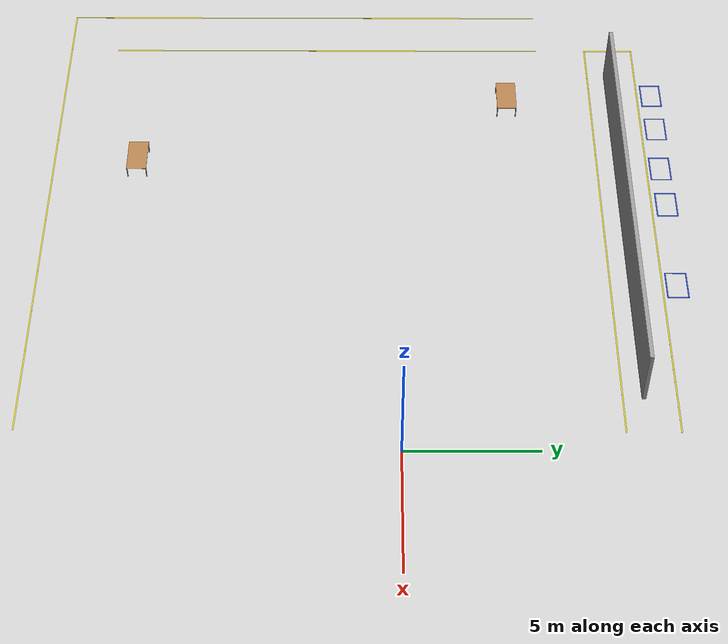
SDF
<sdf version="1.6">
 <world name="default">
  <model name="ground_plane">
   <static>1</static>
   <link name="link">
    <collision name="collision">
     <geometry><plane><normal>0 0 1</normal><size>100 100</size></plane></geometry>
     <surface><friction><ode><mu>100</mu><mu2>50</mu2></ode></friction></surface>
    </collision>
    <visual name="visual">
     <cast_shadows>0</cast_shadows>
     <geometry><plane><normal>0 0 1</normal><size>100 100</size></plane></geometry>
     <material>
      <script><uri>file://media/materials/scripts/gazebo.material</uri><name>Gazebo/Grey</name></script>
     </material>
    </visual>
   </link>
  </model>
  <model name="factoryWall_1">
   <pose>-10.8 8.85 0 0 -0 1.570796</pose>
   <link name="Wall_0">
    <collision name="Wall1_0_Collision">
     <geometry><box><size>17 0.15 2.5</size></box></geometry>
     <pose>0 0 1.25 0 -0 0</pose>
    </collision>
    <visual name="Wall1_0_Visual">
     <pose>0 0 1.25 0 -0 0</pose>
     <geometry><box><size>17 0.15 2.5</size></box></geometry>
     <material>
      <script><uri>file://media/materials/scripts/gazebo.material</uri><name>Gazebo/Grey</name></script>
      <ambient>1 1 1 1</ambient>
     </material>
     <meta><layer>0</layer></meta>
    </visual>
    <pose>0 0 0 0 -0 1.570796</pose>
   </link>
   <static>1</static>
  </model>
  <model name="line20m">
   <link name="link_0">
    <inertial>
     <mass>1</mass>
     <inertia>
      <ixx>0.166667</ixx>
      <ixy>0</ixy>
      <ixz>0</ixz>
      <iyy>0.166667</iyy>
      <iyz>0</iyz>
      <izz>0.166667</izz>
     </inertia>
    </inertial>
    <visual name="visual">
     <geometry><box><size>0.05 20 0.001</size></box></geometry>
     <material>
      <lighting>1</lighting>
      <script><uri>file://media/materials/scripts/gazebo.material</uri><name>Gazebo/Yellow</name></script>
     </material>
    </visual>
    <collision name="collision">
     <geometry><box><size>0.05 20 0.001</size></box></geometry>
     <surface>
      <friction>
       <ode><mu>1</mu><mu2>1</mu2><fdir1>0 0 0</fdir1><slip1>0</slip1><slip2>0</slip2></ode>
       <torsional>
        <coefficient>1</coefficient>
        <patch_radius>0</patch_radius>
        <surface_radius>0</surface_radius>
        <use_patch_radius>1</use_patch_radius>
        <ode><slip>0</slip></ode>
       </torsional>
      </friction>
      <bounce><restitution_coefficient>0</restitution_coefficient><threshold>1e+06</threshold></bounce>
      <contact>
       <collide_without_contact>0</collide_without_contact>
       <collide_without_contact_bitmask>1</collide_without_contact_bitmask>
       <collide_bitmask>1</collide_bitmask>
       <ode>
        <soft_cfm>0</soft_cfm>
        <soft_erp>0.2</soft_erp>
        <kp>1e+13</kp>
        <kd>1</kd>
        <max_vel>0.01</max_vel>
        <min_depth>0</min_depth>
       </ode>
       <bullet>
        <split_impulse>1</split_impulse>
        <split_impulse_penetration_threshold>-0.01</split_impulse_penetration_threshold>
        <soft_cfm>0</soft_cfm>
        <soft_erp>0.2</soft_erp>
        <kp>1e+13</kp>
        <kd>1</kd>
       </bullet>
      </contact>
     </surface>
    </collision>
   </link>
   <static>1</static>
   <pose>-22.9002 -3.99821 0 0 -0 0</pose>
  </model>
  <model name="line20m_1">
   <link name="link_0">
    <inertial>
     <mass>1</mass>
     <inertia>
      <ixx>0.166667</ixx>
      <ixy>0</ixy>
      <ixz>0</ixz>
      <iyy>0.166667</iyy>
      <iyz>0</iyz>
      <izz>0.166667</izz>
     </inertia>
    </inertial>
    <visual name="visual">
     <geometry><box><size>0.05 20 0.001</size></box></geometry>
     <material>
      <lighting>1</lighting>
      <script><uri>file://media/materials/scripts/gazebo.material</uri><name>Gazebo/Yellow</name></script>
     </material>
    </visual>
    <collision name="collision">
     <geometry><box><size>0.05 20 0.001</size></box></geometry>
     <surface>
      <friction>
       <ode><mu>1</mu><mu2>1</mu2><fdir1>0 0 0</fdir1><slip1>0</slip1><slip2>0</slip2></ode>
       <torsional>
        <coefficient>1</coefficient>
        <patch_radius>0</patch_radius>
        <surface_radius>0</surface_radius>
        <use_patch_radius>1</use_patch_radius>
        <ode><slip>0</slip></ode>
       </torsional>
      </friction>
      <bounce><restitution_coefficient>0</restitution_coefficient><threshold>1e+06</threshold></bounce>
      <contact>
       <collide_without_contact>0</collide_without_contact>
       <collide_without_contact_bitmask>1</collide_without_contact_bitmask>
       <collide_bitmask>1</collide_bitmask>
       <ode>
        <soft_cfm>0</soft_cfm>
        <soft_erp>0.2</soft_erp>
        <kp>1e+13</kp>
        <kd>1</kd>
        <max_vel>0.01</max_vel>
        <min_depth>0</min_depth>
       </ode>
       <bullet>
        <split_impulse>1</split_impulse>
        <split_impulse_penetration_threshold>-0.01</split_impulse_penetration_threshold>
        <soft_cfm>0</soft_cfm>
        <soft_erp>0.2</soft_erp>
        <kp>1e+13</kp>
        <kd>1</kd>
       </bullet>
      </contact>
     </surface>
    </collision>
   </link>
   <static>1</static>
   <pose>-10.83 10.0802 0 0 -0 1.5708</pose>
  </model>
  <model name="line2m_2">
   <link name="link_0">
    <inertial>
     <mass>1</mass>
     <inertia>
      <ixx>0.166667</ixx>
      <ixy>0</ixy>
      <ixz>0</ixz>
      <iyy>0.166667</iyy>
      <iyz>0</iyz>
      <izz>0.166667</izz>
     </inertia>
    </inertial>
    <visual name="visual">
     <geometry><box><size>2 0.05 0.001</size></box></geometry>
     <material>
      <lighting>1</lighting>
      <script><uri>file://media/materials/scripts/gazebo.material</uri><name>Gazebo/Yellow</name></script>
     </material>
    </visual>
    <collision name="collision">
     <geometry><box><size>2 0.05 0.001</size></box></geometry>
     <surface>
      <friction>
       <ode><mu>1</mu><mu2>1</mu2><fdir1>0 0 0</fdir1><slip1>0</slip1><slip2>0</slip2></ode>
       <torsional>
        <coefficient>1</coefficient>
        <patch_radius>0</patch_radius>
        <surface_radius>0</surface_radius>
        <use_patch_radius>1</use_patch_radius>
        <ode><slip>0</slip></ode>
       </torsional>
      </friction>
      <bounce><restitution_coefficient>0</restitution_coefficient><threshold>1e+06</threshold></bounce>
      <contact>
       <collide_without_contact>0</collide_without_contact>
       <collide_without_contact_bitmask>1</collide_without_contact_bitmask>
       <collide_bitmask>1</collide_bitmask>
       <ode>
        <soft_cfm>0</soft_cfm>
        <soft_erp>0.2</soft_erp>
        <kp>1e+13</kp>
        <kd>1</kd>
        <max_vel>0.01</max_vel>
        <min_depth>0</min_depth>
       </ode>
       <bullet>
        <split_impulse>1</split_impulse>
        <split_impulse_penetration_threshold>-0.01</split_impulse_penetration_threshold>
        <soft_cfm>0</soft_cfm>
        <soft_erp>0.2</soft_erp>
        <kp>1e+13</kp>
        <kd>1</kd>
       </bullet>
      </contact>
     </surface>
    </collision>
   </link>
   <static>1</static>
   <pose>-20.805 9.06119 0 0 -0 1.5708</pose>
  </model>
  <model name="line20m_2">
   <link name="link_0">
    <inertial>
     <mass>1</mass>
     <inertia>
      <ixx>0.166667</ixx>
      <ixy>0</ixy>
      <ixz>0</ixz>
      <iyy>0.166667</iyy>
      <iyz>0</iyz>
      <izz>0.166667</izz>
     </inertia>
    </inertial>
    <visual name="visual">
     <geometry><box><size>0.05 20 0.001</size></box></geometry>
     <material>
      <lighting>1</lighting>
      <script><uri>file://media/materials/scripts/gazebo.material</uri><name>Gazebo/Yellow</name></script>
     </material>
    </visual>
    <collision name="collision">
     <geometry><box><size>0.05 20 0.001</size></box></geometry>
     <surface>
      <friction>
       <ode><mu>1</mu><mu2>1</mu2><fdir1>0 0 0</fdir1><slip1>0</slip1><slip2>0</slip2></ode>
       <torsional>
        <coefficient>1</coefficient>
        <patch_radius>0</patch_radius>
        <surface_radius>0</surface_radius>
        <use_patch_radius>1</use_patch_radius>
        <ode><slip>0</slip></ode>
       </torsional>
      </friction>
      <bounce><restitution_coefficient>0</restitution_coefficient><threshold>1e+06</threshold></bounce>
      <contact>
       <collide_without_contact>0</collide_without_contact>
       <collide_without_contact_bitmask>1</collide_without_contact_bitmask>
       <collide_bitmask>1</collide_bitmask>
       <ode>
        <soft_cfm>0</soft_cfm>
        <soft_erp>0.2</soft_erp>
        <kp>1e+13</kp>
        <kd>1</kd>
        <max_vel>0.01</max_vel>
        <min_depth>0</min_depth>
       </ode>
       <bullet>
        <split_impulse>1</split_impulse>
        <split_impulse_penetration_threshold>-0.01</split_impulse_penetration_threshold>
        <soft_cfm>0</soft_cfm>
        <soft_erp>0.2</soft_erp>
        <kp>1e+13</kp>
        <kd>1</kd>
       </bullet>
      </contact>
     </surface>
    </collision>
   </link>
   <static>1</static>
   <pose>-10.83 8.0802 0 0 -0 1.5708</pose>
  </model>
  <model name="line18m">
   <link name="link_1">
    <inertial>
     <mass>1</mass>
     <inertia>
      <ixx>0.166667</ixx>
      <ixy>0</ixy>
      <ixz>0</ixz>
      <iyy>0.166667</iyy>
      <iyz>0</iyz>
      <izz>0.166667</izz>
     </inertia>
    </inertial>
    <visual name="visual">
     <geometry><box><size>0.05 18 0.001</size></box></geometry>
     <material>
      <lighting>1</lighting>
      <script><uri>file://media/materials/scripts/gazebo.material</uri><name>Gazebo/Yellow</name></script>
     </material>
    </visual>
    <collision name="collision">
     <geometry><box><size>0.05 18 0.001</size></box></geometry>
     <surface>
      <friction>
       <ode><mu>1</mu><mu2>1</mu2><fdir1>0 0 0</fdir1><slip1>0</slip1><slip2>0</slip2></ode>
       <torsional>
        <coefficient>1</coefficient>
        <patch_radius>0</patch_radius>
        <surface_radius>0</surface_radius>
        <use_patch_radius>1</use_patch_radius>
        <ode><slip>0</slip></ode>
       </torsional>
      </friction>
      <bounce><restitution_coefficient>0</restitution_coefficient><threshold>1e+06</threshold></bounce>
      <contact>
       <collide_without_contact>0</collide_without_contact>
       <collide_without_contact_bitmask>1</collide_without_contact_bitmask>
       <collide_bitmask>1</collide_bitmask>
       <ode>
        <soft_cfm>0</soft_cfm>
        <soft_erp>0.2</soft_erp>
        <kp>1e+13</kp>
        <kd>1</kd>
        <max_vel>0.01</max_vel>
        <min_depth>0</min_depth>
       </ode>
       <bullet>
        <split_impulse>1</split_impulse>
        <split_impulse_penetration_threshold>-0.01</split_impulse_penetration_threshold>
        <soft_cfm>0</soft_cfm>
        <soft_erp>0.2</soft_erp>
        <kp>1e+13</kp>
        <kd>1</kd>
       </bullet>
      </contact>
     </surface>
    </collision>
   </link>
   <static>1</static>
   <pose>-20.8079 -2.99039 0 0 -0 0</pose>
  </model>
  <model name="line22m">
   <link name="link_2">
    <inertial>
     <mass>1</mass>
     <inertia>
      <ixx>0.166667</ixx>
      <ixy>0</ixy>
      <ixz>0</ixz>
      <iyy>0.166667</iyy>
      <iyz>0</iyz>
      <izz>0.166667</izz>
     </inertia>
    </inertial>
    <visual name="visual">
     <geometry><box><size>0.05 22 0.001</size></box></geometry>
     <material>
      <lighting>1</lighting>
      <script><uri>file://media/materials/scripts/gazebo.material</uri><name>Gazebo/Yellow</name></script>
     </material>
    </visual>
    <collision name="collision">
     <geometry><box><size>0.05 22 0.001</size></box></geometry>
     <surface>
      <friction>
       <ode><mu>1</mu><mu2>1</mu2><fdir1>0 0 0</fdir1><slip1>0</slip1><slip2>0</slip2></ode>
       <torsional>
        <coefficient>1</coefficient>
        <patch_radius>0</patch_radius>
        <surface_radius>0</surface_radius>
        <use_patch_radius>1</use_patch_radius>
        <ode><slip>0</slip></ode>
       </torsional>
      </friction>
      <bounce><restitution_coefficient>0</restitution_coefficient><threshold>1e+06</threshold></bounce>
      <contact>
       <collide_without_contact>0</collide_without_contact>
       <collide_without_contact_bitmask>1</collide_without_contact_bitmask>
       <collide_bitmask>1</collide_bitmask>
       <ode>
        <soft_cfm>0</soft_cfm>
        <soft_erp>0.2</soft_erp>
        <kp>1e+13</kp>
        <kd>1</kd>
        <max_vel>0.01</max_vel>
        <min_depth>0</min_depth>
       </ode>
       <bullet>
        <split_impulse>1</split_impulse>
        <split_impulse_penetration_threshold>-0.01</split_impulse_penetration_threshold>
        <soft_cfm>0</soft_cfm>
        <soft_erp>0.2</soft_erp>
        <kp>1e+13</kp>
        <kd>1</kd>
       </bullet>
      </contact>
     </surface>
    </collision>
   </link>
   <static>1</static>
   <pose>-11.8751 -13.9732 0 0 -0 1.5708</pose>
  </model>
  <model name="table">
   <static>1</static>
   <link name="link">
    <collision name="surface">
     <pose>0 0 1 0 -0 0</pose>
     <geometry><box><size>1.5 0.8 0.03</size></box></geometry>
     <surface><friction><ode><mu>0.6</mu><mu2>0.6</mu2></ode></friction></surface>
    </collision>
    <visual name="visual1">
     <pose>0 0 1 0 -0 0</pose>
     <geometry><box><size>1.5 0.8 0.03</size></box></geometry>
     <material>
      <script><uri>file://media/materials/scripts/gazebo.material</uri><name>Gazebo/Wood</name></script>
     </material>
    </visual>
    <collision name="front_left_leg">
     <pose>0.68 0.38 0.5 0 -0 0</pose>
     <geometry><cylinder><radius>0.02</radius><length>1</length></cylinder></geometry>
    </collision>
    <visual name="front_left_leg">
     <pose>0.68 0.38 0.5 0 -0 0</pose>
     <geometry><cylinder><radius>0.02</radius><length>1</length></cylinder></geometry>
     <material>
      <script><uri>file://media/materials/scripts/gazebo.material</uri><name>Gazebo/Grey</name></script>
     </material>
    </visual>
    <collision name="front_right_leg">
     <pose>0.68 -0.38 0.5 0 -0 0</pose>
     <geometry><cylinder><radius>0.02</radius><length>1</length></cylinder></geometry>
    </collision>
    <visual name="front_right_leg">
     <pose>0.68 -0.38 0.5 0 -0 0</pose>
     <geometry><cylinder><radius>0.02</radius><length>1</length></cylinder></geometry>
     <material>
      <script><uri>file://media/materials/scripts/gazebo.material</uri><name>Gazebo/Grey</name></script>
     </material>
    </visual>
    <collision name="back_right_leg">
     <pose>-0.68 -0.38 0.5 0 -0 0</pose>
     <geometry><cylinder><radius>0.02</radius><length>1</length></cylinder></geometry>
    </collision>
    <visual name="back_right_leg">
     <pose>-0.68 -0.38 0.5 0 -0 0</pose>
     <geometry><cylinder><radius>0.02</radius><length>1</length></cylinder></geometry>
     <material>
      <script><uri>file://media/materials/scripts/gazebo.material</uri><name>Gazebo/Grey</name></script>
     </material>
    </visual>
    <collision name="back_left_leg">
     <pose>-0.68 0.38 0.5 0 -0 0</pose>
     <geometry><cylinder><radius>0.02</radius><length>1</length></cylinder></geometry>
    </collision>
    <visual name="back_left_leg">
     <pose>-0.68 0.38 0.5 0 -0 0</pose>
     <geometry><cylinder><radius>0.02</radius><length>1</length></cylinder></geometry>
     <material>
      <script><uri>file://media/materials/scripts/gazebo.material</uri><name>Gazebo/Grey</name></script>
     </material>
    </visual>
   </link>
   <pose>-17.5582 4.54 -0.5 0 -0 0</pose>
  </model>
  <model name="table_3">
   <static>1</static>
   <link name="link">
    <collision name="surface">
     <pose>0 0 1 0 -0 0</pose>
     <geometry><box><size>1.5 0.8 0.03</size></box></geometry>
     <surface><friction><ode><mu>0.6</mu><mu2>0.6</mu2></ode></friction></surface>
    </collision>
    <visual name="visual1">
     <pose>0 0 1 0 -0 0</pose>
     <geometry><box><size>1.5 0.8 0.03</size></box></geometry>
     <material>
      <script><uri>file://media/materials/scripts/gazebo.material</uri><name>Gazebo/Wood</name></script>
     </material>
    </visual>
    <collision name="front_left_leg">
     <pose>0.68 0.38 0.5 0 -0 0</pose>
     <geometry><cylinder><radius>0.02</radius><length>1</length></cylinder></geometry>
    </collision>
    <visual name="front_left_leg">
     <pose>0.68 0.38 0.5 0 -0 0</pose>
     <geometry><cylinder><radius>0.02</radius><length>1</length></cylinder></geometry>
     <material>
      <script><uri>file://media/materials/scripts/gazebo.material</uri><name>Gazebo/Grey</name></script>
     </material>
    </visual>
    <collision name="front_right_leg">
     <pose>0.68 -0.38 0.5 0 -0 0</pose>
     <geometry><cylinder><radius>0.02</radius><length>1</length></cylinder></geometry>
    </collision>
    <visual name="front_right_leg">
     <pose>0.68 -0.38 0.5 0 -0 0</pose>
     <geometry><cylinder><radius>0.02</radius><length>1</length></cylinder></geometry>
     <material>
      <script><uri>file://media/materials/scripts/gazebo.material</uri><name>Gazebo/Grey</name></script>
     </material>
    </visual>
    <collision name="back_right_leg">
     <pose>-0.68 -0.38 0.5 0 -0 0</pose>
     <geometry><cylinder><radius>0.02</radius><length>1</length></cylinder></geometry>
    </collision>
    <visual name="back_right_leg">
     <pose>-0.68 -0.38 0.5 0 -0 0</pose>
     <geometry><cylinder><radius>0.02</radius><length>1</length></cylinder></geometry>
     <material>
      <script><uri>file://media/materials/scripts/gazebo.material</uri><name>Gazebo/Grey</name></script>
     </material>
    </visual>
    <collision name="back_left_leg">
     <pose>-0.68 0.38 0.5 0 -0 0</pose>
     <geometry><cylinder><radius>0.02</radius><length>1</length></cylinder></geometry>
    </collision>
    <visual name="back_left_leg">
     <pose>-0.68 0.38 0.5 0 -0 0</pose>
     <geometry><cylinder><radius>0.02</radius><length>1</length></cylinder></geometry>
     <material>
      <script><uri>file://media/materials/scripts/gazebo.material</uri><name>Gazebo/Grey</name></script>
     </material>
    </visual>
   </link>
   <pose>-14.0793 -10.54 -0.5 0 -0 0</pose>
  </model>
  <model name="waitSpot_10">
   <link name="link_4">
    <inertial>
     <mass>1</mass>
     <inertia>
      <ixx>0.166667</ixx>
      <ixy>0</ixy>
      <ixz>0</ixz>
      <iyy>0.166667</iyy>
      <iyz>0</iyz>
      <izz>0.166667</izz>
     </inertia>
    </inertial>
    <visual name="ModelPreview_8::link_4::visual_3">
     <pose>-0.6 0 0 0 -0 0</pose>
     <geometry><box><size>0.05 0.8 0.0001</size></box></geometry>
     <material>
      <lighting>1</lighting>
      <script><uri>file://media/materials/scripts/gazebo.material</uri><name>Gazebo/Blue</name></script>
     </material>
    </visual>
    <visual name="ModelPreview_8::link_4::visual_1">
     <pose>0 -0.4 0 0 -0 0</pose>
     <geometry><box><size>1.25 0.05 0.0001</size></box></geometry>
     <material>
      <lighting>1</lighting>
      <script><uri>file://media/materials/scripts/gazebo.material</uri><name>Gazebo/Blue</name></script>
     </material>
    </visual>
    <visual name="ModelPreview_8::link_4::visual_2">
     <pose>0.6 0 0 0 -0 0</pose>
     <geometry><box><size>0.05 0.8 0.0001</size></box></geometry>
     <material>
      <lighting>1</lighting>
      <script><uri>file://media/materials/scripts/gazebo.material</uri><name>Gazebo/Blue</name></script>
     </material>
    </visual>
    <visual name="visual">
     <pose>0 0.4 0 0 -0 0</pose>
     <geometry><box><size>1.25 0.05 0.0001</size></box></geometry>
     <material>
      <lighting>1</lighting>
      <script><uri>file://media/materials/scripts/gazebo.material</uri><name>Gazebo/Blue</name></script>
     </material>
    </visual>
    <collision name="collision_2">
     <pose>0.6 0 0 0 -0 0</pose>
     <geometry><box><size>0.05 0.8 0.0001</size></box></geometry>
     <surface>
      <friction>
       <ode><mu>1</mu><mu2>1</mu2><fdir1>0 0 0</fdir1><slip1>0</slip1><slip2>0</slip2></ode>
       <torsional>
        <coefficient>1</coefficient>
        <patch_radius>0</patch_radius>
        <surface_radius>0</surface_radius>
        <use_patch_radius>1</use_patch_radius>
        <ode><slip>0</slip></ode>
       </torsional>
      </friction>
      <bounce><restitution_coefficient>0</restitution_coefficient><threshold>1e+06</threshold></bounce>
      <contact>
       <collide_without_contact>0</collide_without_contact>
       <collide_without_contact_bitmask>1</collide_without_contact_bitmask>
       <collide_bitmask>1</collide_bitmask>
       <ode>
        <soft_cfm>0</soft_cfm>
        <soft_erp>0.2</soft_erp>
        <kp>1e+13</kp>
        <kd>1</kd>
        <max_vel>0.01</max_vel>
        <min_depth>0</min_depth>
       </ode>
       <bullet>
        <split_impulse>1</split_impulse>
        <split_impulse_penetration_threshold>-0.01</split_impulse_penetration_threshold>
        <soft_cfm>0</soft_cfm>
        <soft_erp>0.2</soft_erp>
        <kp>1e+13</kp>
        <kd>1</kd>
       </bullet>
      </contact>
     </surface>
    </collision>
    <collision name="collision">
     <pose>0 0.4 0 0 -0 0</pose>
     <geometry><box><size>1.25 0.05 0.0001</size></box></geometry>
     <surface>
      <friction>
       <ode><mu>1</mu><mu2>1</mu2><fdir1>0 0 0</fdir1><slip1>0</slip1><slip2>0</slip2></ode>
       <torsional>
        <coefficient>1</coefficient>
        <patch_radius>0</patch_radius>
        <surface_radius>0</surface_radius>
        <use_patch_radius>1</use_patch_radius>
        <ode><slip>0</slip></ode>
       </torsional>
      </friction>
      <bounce><restitution_coefficient>0</restitution_coefficient><threshold>1e+06</threshold></bounce>
      <contact>
       <collide_without_contact>0</collide_without_contact>
       <collide_without_contact_bitmask>1</collide_without_contact_bitmask>
       <collide_bitmask>1</collide_bitmask>
       <ode>
        <soft_cfm>0</soft_cfm>
        <soft_erp>0.2</soft_erp>
        <kp>1e+13</kp>
        <kd>1</kd>
        <max_vel>0.01</max_vel>
        <min_depth>0</min_depth>
       </ode>
       <bullet>
        <split_impulse>1</split_impulse>
        <split_impulse_penetration_threshold>-0.01</split_impulse_penetration_threshold>
        <soft_cfm>0</soft_cfm>
        <soft_erp>0.2</soft_erp>
        <kp>1e+13</kp>
        <kd>1</kd>
       </bullet>
      </contact>
     </surface>
    </collision>
    <collision name="collision_1">
     <pose>0 -0.4 0 0 -0 0</pose>
     <geometry><box><size>1.25 0.05 0.0001</size></box></geometry>
     <surface>
      <friction>
       <ode><mu>1</mu><mu2>1</mu2><fdir1>0 0 0</fdir1><slip1>0</slip1><slip2>0</slip2></ode>
       <torsional>
        <coefficient>1</coefficient>
        <patch_radius>0</patch_radius>
        <surface_radius>0</surface_radius>
        <use_patch_radius>1</use_patch_radius>
        <ode><slip>0</slip></ode>
       </torsional>
      </friction>
      <bounce><restitution_coefficient>0</restitution_coefficient><threshold>1e+06</threshold></bounce>
      <contact>
       <collide_without_contact>0</collide_without_contact>
       <collide_without_contact_bitmask>1</collide_without_contact_bitmask>
       <collide_bitmask>1</collide_bitmask>
       <ode>
        <soft_cfm>0</soft_cfm>
        <soft_erp>0.2</soft_erp>
        <kp>1e+13</kp>
        <kd>1</kd>
        <max_vel>0.01</max_vel>
        <min_depth>0</min_depth>
       </ode>
       <bullet>
        <split_impulse>1</split_impulse>
        <split_impulse_penetration_threshold>-0.01</split_impulse_penetration_threshold>
        <soft_cfm>0</soft_cfm>
        <soft_erp>0.2</soft_erp>
        <kp>1e+13</kp>
        <kd>1</kd>
       </bullet>
      </contact>
     </surface>
    </collision>
    <collision name="collision_3">
     <pose>-0.6 0 0 0 -0 0</pose>
     <geometry><box><size>0.05 0.8 0.0001</size></box></geometry>
     <surface>
      <friction>
       <ode><mu>1</mu><mu2>1</mu2><fdir1>0 0 0</fdir1><slip1>0</slip1><slip2>0</slip2></ode>
       <torsional>
        <coefficient>1</coefficient>
        <patch_radius>0</patch_radius>
        <surface_radius>0</surface_radius>
        <use_patch_radius>1</use_patch_radius>
        <ode><slip>0</slip></ode>
       </torsional>
      </friction>
      <bounce><restitution_coefficient>0</restitution_coefficient><threshold>1e+06</threshold></bounce>
      <contact>
       <collide_without_contact>0</collide_without_contact>
       <collide_without_contact_bitmask>1</collide_without_contact_bitmask>
       <collide_bitmask>1</collide_bitmask>
       <ode>
        <soft_cfm>0</soft_cfm>
        <soft_erp>0.2</soft_erp>
        <kp>1e+13</kp>
        <kd>1</kd>
        <max_vel>0.01</max_vel>
        <min_depth>0</min_depth>
       </ode>
       <bullet>
        <split_impulse>1</split_impulse>
        <split_impulse_penetration_threshold>-0.01</split_impulse_penetration_threshold>
        <soft_cfm>0</soft_cfm>
        <soft_erp>0.2</soft_erp>
        <kp>1e+13</kp>
        <kd>1</kd>
       </bullet>
      </contact>
     </surface>
    </collision>
   </link>
   <static>1</static>
   <pose>-7.70934 10.6445 0 0 -0 0</pose>
  </model>
  <model name="waitSpot_12">
   <link name="link_4">
    <inertial>
     <mass>1</mass>
     <inertia>
      <ixx>0.166667</ixx>
      <ixy>0</ixy>
      <ixz>0</ixz>
      <iyy>0.166667</iyy>
      <iyz>0</iyz>
      <izz>0.166667</izz>
     </inertia>
    </inertial>
    <visual name="ModelPreview_8::link_4::visual_3">
     <pose>-0.6 0 0 0 -0 0</pose>
     <geometry><box><size>0.05 0.8 0.0001</size></box></geometry>
     <material>
      <lighting>1</lighting>
      <script><uri>file://media/materials/scripts/gazebo.material</uri><name>Gazebo/Blue</name></script>
     </material>
    </visual>
    <visual name="ModelPreview_8::link_4::visual_1">
     <pose>0 -0.4 0 0 -0 0</pose>
     <geometry><box><size>1.25 0.05 0.0001</size></box></geometry>
     <material>
      <lighting>1</lighting>
      <script><uri>file://media/materials/scripts/gazebo.material</uri><name>Gazebo/Blue</name></script>
     </material>
    </visual>
    <visual name="ModelPreview_8::link_4::visual_2">
     <pose>0.6 0 0 0 -0 0</pose>
     <geometry><box><size>0.05 0.8 0.0001</size></box></geometry>
     <material>
      <lighting>1</lighting>
      <script><uri>file://media/materials/scripts/gazebo.material</uri><name>Gazebo/Blue</name></script>
     </material>
    </visual>
    <visual name="visual">
     <pose>0 0.4 0 0 -0 0</pose>
     <geometry><box><size>1.25 0.05 0.0001</size></box></geometry>
     <material>
      <lighting>1</lighting>
      <script><uri>file://media/materials/scripts/gazebo.material</uri><name>Gazebo/Blue</name></script>
     </material>
    </visual>
    <collision name="collision_2">
     <pose>0.6 0 0 0 -0 0</pose>
     <geometry><box><size>0.05 0.8 0.0001</size></box></geometry>
     <surface>
      <friction>
       <ode><mu>1</mu><mu2>1</mu2><fdir1>0 0 0</fdir1><slip1>0</slip1><slip2>0</slip2></ode>
       <torsional>
        <coefficient>1</coefficient>
        <patch_radius>0</patch_radius>
        <surface_radius>0</surface_radius>
        <use_patch_radius>1</use_patch_radius>
        <ode><slip>0</slip></ode>
       </torsional>
      </friction>
      <bounce><restitution_coefficient>0</restitution_coefficient><threshold>1e+06</threshold></bounce>
      <contact>
       <collide_without_contact>0</collide_without_contact>
       <collide_without_contact_bitmask>1</collide_without_contact_bitmask>
       <collide_bitmask>1</collide_bitmask>
       <ode>
        <soft_cfm>0</soft_cfm>
        <soft_erp>0.2</soft_erp>
        <kp>1e+13</kp>
        <kd>1</kd>
        <max_vel>0.01</max_vel>
        <min_depth>0</min_depth>
       </ode>
       <bullet>
        <split_impulse>1</split_impulse>
        <split_impulse_penetration_threshold>-0.01</split_impulse_penetration_threshold>
        <soft_cfm>0</soft_cfm>
        <soft_erp>0.2</soft_erp>
        <kp>1e+13</kp>
        <kd>1</kd>
       </bullet>
      </contact>
     </surface>
    </collision>
    <collision name="collision">
     <pose>0 0.4 0 0 -0 0</pose>
     <geometry><box><size>1.25 0.05 0.0001</size></box></geometry>
     <surface>
      <friction>
       <ode><mu>1</mu><mu2>1</mu2><fdir1>0 0 0</fdir1><slip1>0</slip1><slip2>0</slip2></ode>
       <torsional>
        <coefficient>1</coefficient>
        <patch_radius>0</patch_radius>
        <surface_radius>0</surface_radius>
        <use_patch_radius>1</use_patch_radius>
        <ode><slip>0</slip></ode>
       </torsional>
      </friction>
      <bounce><restitution_coefficient>0</restitution_coefficient><threshold>1e+06</threshold></bounce>
      <contact>
       <collide_without_contact>0</collide_without_contact>
       <collide_without_contact_bitmask>1</collide_without_contact_bitmask>
       <collide_bitmask>1</collide_bitmask>
       <ode>
        <soft_cfm>0</soft_cfm>
        <soft_erp>0.2</soft_erp>
        <kp>1e+13</kp>
        <kd>1</kd>
        <max_vel>0.01</max_vel>
        <min_depth>0</min_depth>
       </ode>
       <bullet>
        <split_impulse>1</split_impulse>
        <split_impulse_penetration_threshold>-0.01</split_impulse_penetration_threshold>
        <soft_cfm>0</soft_cfm>
        <soft_erp>0.2</soft_erp>
        <kp>1e+13</kp>
        <kd>1</kd>
       </bullet>
      </contact>
     </surface>
    </collision>
    <collision name="collision_1">
     <pose>0 -0.4 0 0 -0 0</pose>
     <geometry><box><size>1.25 0.05 0.0001</size></box></geometry>
     <surface>
      <friction>
       <ode><mu>1</mu><mu2>1</mu2><fdir1>0 0 0</fdir1><slip1>0</slip1><slip2>0</slip2></ode>
       <torsional>
        <coefficient>1</coefficient>
        <patch_radius>0</patch_radius>
        <surface_radius>0</surface_radius>
        <use_patch_radius>1</use_patch_radius>
        <ode><slip>0</slip></ode>
       </torsional>
      </friction>
      <bounce><restitution_coefficient>0</restitution_coefficient><threshold>1e+06</threshold></bounce>
      <contact>
       <collide_without_contact>0</collide_without_contact>
       <collide_without_contact_bitmask>1</collide_without_contact_bitmask>
       <collide_bitmask>1</collide_bitmask>
       <ode>
        <soft_cfm>0</soft_cfm>
        <soft_erp>0.2</soft_erp>
        <kp>1e+13</kp>
        <kd>1</kd>
        <max_vel>0.01</max_vel>
        <min_depth>0</min_depth>
       </ode>
       <bullet>
        <split_impulse>1</split_impulse>
        <split_impulse_penetration_threshold>-0.01</split_impulse_penetration_threshold>
        <soft_cfm>0</soft_cfm>
        <soft_erp>0.2</soft_erp>
        <kp>1e+13</kp>
        <kd>1</kd>
       </bullet>
      </contact>
     </surface>
    </collision>
    <collision name="collision_3">
     <pose>-0.6 0 0 0 -0 0</pose>
     <geometry><box><size>0.05 0.8 0.0001</size></box></geometry>
     <surface>
      <friction>
       <ode><mu>1</mu><mu2>1</mu2><fdir1>0 0 0</fdir1><slip1>0</slip1><slip2>0</slip2></ode>
       <torsional>
        <coefficient>1</coefficient>
        <patch_radius>0</patch_radius>
        <surface_radius>0</surface_radius>
        <use_patch_radius>1</use_patch_radius>
        <ode><slip>0</slip></ode>
       </torsional>
      </friction>
      <bounce><restitution_coefficient>0</restitution_coefficient><threshold>1e+06</threshold></bounce>
      <contact>
       <collide_without_contact>0</collide_without_contact>
       <collide_without_contact_bitmask>1</collide_without_contact_bitmask>
       <collide_bitmask>1</collide_bitmask>
       <ode>
        <soft_cfm>0</soft_cfm>
        <soft_erp>0.2</soft_erp>
        <kp>1e+13</kp>
        <kd>1</kd>
        <max_vel>0.01</max_vel>
        <min_depth>0</min_depth>
       </ode>
       <bullet>
        <split_impulse>1</split_impulse>
        <split_impulse_penetration_threshold>-0.01</split_impulse_penetration_threshold>
        <soft_cfm>0</soft_cfm>
        <soft_erp>0.2</soft_erp>
        <kp>1e+13</kp>
        <kd>1</kd>
       </bullet>
      </contact>
     </surface>
    </collision>
   </link>
   <static>1</static>
   <pose>-11.882 10.6837 0 0 -0 0</pose>
  </model>
  <model name="waitSpot_13">
   <link name="link_4">
    <inertial>
     <mass>1</mass>
     <inertia>
      <ixx>0.166667</ixx>
      <ixy>0</ixy>
      <ixz>0</ixz>
      <iyy>0.166667</iyy>
      <iyz>0</iyz>
      <izz>0.166667</izz>
     </inertia>
    </inertial>
    <visual name="ModelPreview_8::link_4::visual_3">
     <pose>-0.6 0 0 0 -0 0</pose>
     <geometry><box><size>0.05 0.8 0.0001</size></box></geometry>
     <material>
      <lighting>1</lighting>
      <script><uri>file://media/materials/scripts/gazebo.material</uri><name>Gazebo/Blue</name></script>
     </material>
    </visual>
    <visual name="ModelPreview_8::link_4::visual_1">
     <pose>0 -0.4 0 0 -0 0</pose>
     <geometry><box><size>1.25 0.05 0.0001</size></box></geometry>
     <material>
      <lighting>1</lighting>
      <script><uri>file://media/materials/scripts/gazebo.material</uri><name>Gazebo/Blue</name></script>
     </material>
    </visual>
    <visual name="ModelPreview_8::link_4::visual_2">
     <pose>0.6 0 0 0 -0 0</pose>
     <geometry><box><size>0.05 0.8 0.0001</size></box></geometry>
     <material>
      <lighting>1</lighting>
      <script><uri>file://media/materials/scripts/gazebo.material</uri><name>Gazebo/Blue</name></script>
     </material>
    </visual>
    <visual name="visual">
     <pose>0 0.4 0 0 -0 0</pose>
     <geometry><box><size>1.25 0.05 0.0001</size></box></geometry>
     <material>
      <lighting>1</lighting>
      <script><uri>file://media/materials/scripts/gazebo.material</uri><name>Gazebo/Blue</name></script>
     </material>
    </visual>
    <collision name="collision_2">
     <pose>0.6 0 0 0 -0 0</pose>
     <geometry><box><size>0.05 0.8 0.0001</size></box></geometry>
     <surface>
      <friction>
       <ode><mu>1</mu><mu2>1</mu2><fdir1>0 0 0</fdir1><slip1>0</slip1><slip2>0</slip2></ode>
       <torsional>
        <coefficient>1</coefficient>
        <patch_radius>0</patch_radius>
        <surface_radius>0</surface_radius>
        <use_patch_radius>1</use_patch_radius>
        <ode><slip>0</slip></ode>
       </torsional>
      </friction>
      <bounce><restitution_coefficient>0</restitution_coefficient><threshold>1e+06</threshold></bounce>
      <contact>
       <collide_without_contact>0</collide_without_contact>
       <collide_without_contact_bitmask>1</collide_without_contact_bitmask>
       <collide_bitmask>1</collide_bitmask>
       <ode>
        <soft_cfm>0</soft_cfm>
        <soft_erp>0.2</soft_erp>
        <kp>1e+13</kp>
        <kd>1</kd>
        <max_vel>0.01</max_vel>
        <min_depth>0</min_depth>
       </ode>
       <bullet>
        <split_impulse>1</split_impulse>
        <split_impulse_penetration_threshold>-0.01</split_impulse_penetration_threshold>
        <soft_cfm>0</soft_cfm>
        <soft_erp>0.2</soft_erp>
        <kp>1e+13</kp>
        <kd>1</kd>
       </bullet>
      </contact>
     </surface>
    </collision>
    <collision name="collision">
     <pose>0 0.4 0 0 -0 0</pose>
     <geometry><box><size>1.25 0.05 0.0001</size></box></geometry>
     <surface>
      <friction>
       <ode><mu>1</mu><mu2>1</mu2><fdir1>0 0 0</fdir1><slip1>0</slip1><slip2>0</slip2></ode>
       <torsional>
        <coefficient>1</coefficient>
        <patch_radius>0</patch_radius>
        <surface_radius>0</surface_radius>
        <use_patch_radius>1</use_patch_radius>
        <ode><slip>0</slip></ode>
       </torsional>
      </friction>
      <bounce><restitution_coefficient>0</restitution_coefficient><threshold>1e+06</threshold></bounce>
      <contact>
       <collide_without_contact>0</collide_without_contact>
       <collide_without_contact_bitmask>1</collide_without_contact_bitmask>
       <collide_bitmask>1</collide_bitmask>
       <ode>
        <soft_cfm>0</soft_cfm>
        <soft_erp>0.2</soft_erp>
        <kp>1e+13</kp>
        <kd>1</kd>
        <max_vel>0.01</max_vel>
        <min_depth>0</min_depth>
       </ode>
       <bullet>
        <split_impulse>1</split_impulse>
        <split_impulse_penetration_threshold>-0.01</split_impulse_penetration_threshold>
        <soft_cfm>0</soft_cfm>
        <soft_erp>0.2</soft_erp>
        <kp>1e+13</kp>
        <kd>1</kd>
       </bullet>
      </contact>
     </surface>
    </collision>
    <collision name="collision_1">
     <pose>0 -0.4 0 0 -0 0</pose>
     <geometry><box><size>1.25 0.05 0.0001</size></box></geometry>
     <surface>
      <friction>
       <ode><mu>1</mu><mu2>1</mu2><fdir1>0 0 0</fdir1><slip1>0</slip1><slip2>0</slip2></ode>
       <torsional>
        <coefficient>1</coefficient>
        <patch_radius>0</patch_radius>
        <surface_radius>0</surface_radius>
        <use_patch_radius>1</use_patch_radius>
        <ode><slip>0</slip></ode>
       </torsional>
      </friction>
      <bounce><restitution_coefficient>0</restitution_coefficient><threshold>1e+06</threshold></bounce>
      <contact>
       <collide_without_contact>0</collide_without_contact>
       <collide_without_contact_bitmask>1</collide_without_contact_bitmask>
       <collide_bitmask>1</collide_bitmask>
       <ode>
        <soft_cfm>0</soft_cfm>
        <soft_erp>0.2</soft_erp>
        <kp>1e+13</kp>
        <kd>1</kd>
        <max_vel>0.01</max_vel>
        <min_depth>0</min_depth>
       </ode>
       <bullet>
        <split_impulse>1</split_impulse>
        <split_impulse_penetration_threshold>-0.01</split_impulse_penetration_threshold>
        <soft_cfm>0</soft_cfm>
        <soft_erp>0.2</soft_erp>
        <kp>1e+13</kp>
        <kd>1</kd>
       </bullet>
      </contact>
     </surface>
    </collision>
    <collision name="collision_3">
     <pose>-0.6 0 0 0 -0 0</pose>
     <geometry><box><size>0.05 0.8 0.0001</size></box></geometry>
     <surface>
      <friction>
       <ode><mu>1</mu><mu2>1</mu2><fdir1>0 0 0</fdir1><slip1>0</slip1><slip2>0</slip2></ode>
       <torsional>
        <coefficient>1</coefficient>
        <patch_radius>0</patch_radius>
        <surface_radius>0</surface_radius>
        <use_patch_radius>1</use_patch_radius>
        <ode><slip>0</slip></ode>
       </torsional>
      </friction>
      <bounce><restitution_coefficient>0</restitution_coefficient><threshold>1e+06</threshold></bounce>
      <contact>
       <collide_without_contact>0</collide_without_contact>
       <collide_without_contact_bitmask>1</collide_without_contact_bitmask>
       <collide_bitmask>1</collide_bitmask>
       <ode>
        <soft_cfm>0</soft_cfm>
        <soft_erp>0.2</soft_erp>
        <kp>1e+13</kp>
        <kd>1</kd>
        <max_vel>0.01</max_vel>
        <min_depth>0</min_depth>
       </ode>
       <bullet>
        <split_impulse>1</split_impulse>
        <split_impulse_penetration_threshold>-0.01</split_impulse_penetration_threshold>
        <soft_cfm>0</soft_cfm>
        <soft_erp>0.2</soft_erp>
        <kp>1e+13</kp>
        <kd>1</kd>
       </bullet>
      </contact>
     </surface>
    </collision>
   </link>
   <static>1</static>
   <pose>-13.8575 10.6317 0 0 -0 0</pose>
  </model>
  <model name="waitSpot_14">
   <link name="link_4">
    <inertial>
     <mass>1</mass>
     <inertia>
      <ixx>0.166667</ixx>
      <ixy>0</ixy>
      <ixz>0</ixz>
      <iyy>0.166667</iyy>
      <iyz>0</iyz>
      <izz>0.166667</izz>
     </inertia>
    </inertial>
    <visual name="ModelPreview_8::link_4::visual_3">
     <pose>-0.6 0 0 0 -0 0</pose>
     <geometry><box><size>0.05 0.8 0.0001</size></box></geometry>
     <material>
      <lighting>1</lighting>
      <script><uri>file://media/materials/scripts/gazebo.material</uri><name>Gazebo/Blue</name></script>
     </material>
    </visual>
    <visual name="ModelPreview_8::link_4::visual_1">
     <pose>0 -0.4 0 0 -0 0</pose>
     <geometry><box><size>1.25 0.05 0.0001</size></box></geometry>
     <material>
      <lighting>1</lighting>
      <script><uri>file://media/materials/scripts/gazebo.material</uri><name>Gazebo/Blue</name></script>
     </material>
    </visual>
    <visual name="ModelPreview_8::link_4::visual_2">
     <pose>0.6 0 0 0 -0 0</pose>
     <geometry><box><size>0.05 0.8 0.0001</size></box></geometry>
     <material>
      <lighting>1</lighting>
      <script><uri>file://media/materials/scripts/gazebo.material</uri><name>Gazebo/Blue</name></script>
     </material>
    </visual>
    <visual name="visual">
     <pose>0 0.4 0 0 -0 0</pose>
     <geometry><box><size>1.25 0.05 0.0001</size></box></geometry>
     <material>
      <lighting>1</lighting>
      <script><uri>file://media/materials/scripts/gazebo.material</uri><name>Gazebo/Blue</name></script>
     </material>
    </visual>
    <collision name="collision_2">
     <pose>0.6 0 0 0 -0 0</pose>
     <geometry><box><size>0.05 0.8 0.0001</size></box></geometry>
     <surface>
      <friction>
       <ode><mu>1</mu><mu2>1</mu2><fdir1>0 0 0</fdir1><slip1>0</slip1><slip2>0</slip2></ode>
       <torsional>
        <coefficient>1</coefficient>
        <patch_radius>0</patch_radius>
        <surface_radius>0</surface_radius>
        <use_patch_radius>1</use_patch_radius>
        <ode><slip>0</slip></ode>
       </torsional>
      </friction>
      <bounce><restitution_coefficient>0</restitution_coefficient><threshold>1e+06</threshold></bounce>
      <contact>
       <collide_without_contact>0</collide_without_contact>
       <collide_without_contact_bitmask>1</collide_without_contact_bitmask>
       <collide_bitmask>1</collide_bitmask>
       <ode>
        <soft_cfm>0</soft_cfm>
        <soft_erp>0.2</soft_erp>
        <kp>1e+13</kp>
        <kd>1</kd>
        <max_vel>0.01</max_vel>
        <min_depth>0</min_depth>
       </ode>
       <bullet>
        <split_impulse>1</split_impulse>
        <split_impulse_penetration_threshold>-0.01</split_impulse_penetration_threshold>
        <soft_cfm>0</soft_cfm>
        <soft_erp>0.2</soft_erp>
        <kp>1e+13</kp>
        <kd>1</kd>
       </bullet>
      </contact>
     </surface>
    </collision>
    <collision name="collision">
     <pose>0 0.4 0 0 -0 0</pose>
     <geometry><box><size>1.25 0.05 0.0001</size></box></geometry>
     <surface>
      <friction>
       <ode><mu>1</mu><mu2>1</mu2><fdir1>0 0 0</fdir1><slip1>0</slip1><slip2>0</slip2></ode>
       <torsional>
        <coefficient>1</coefficient>
        <patch_radius>0</patch_radius>
        <surface_radius>0</surface_radius>
        <use_patch_radius>1</use_patch_radius>
        <ode><slip>0</slip></ode>
       </torsional>
      </friction>
      <bounce><restitution_coefficient>0</restitution_coefficient><threshold>1e+06</threshold></bounce>
      <contact>
       <collide_without_contact>0</collide_without_contact>
       <collide_without_contact_bitmask>1</collide_without_contact_bitmask>
       <collide_bitmask>1</collide_bitmask>
       <ode>
        <soft_cfm>0</soft_cfm>
        <soft_erp>0.2</soft_erp>
        <kp>1e+13</kp>
        <kd>1</kd>
        <max_vel>0.01</max_vel>
        <min_depth>0</min_depth>
       </ode>
       <bullet>
        <split_impulse>1</split_impulse>
        <split_impulse_penetration_threshold>-0.01</split_impulse_penetration_threshold>
        <soft_cfm>0</soft_cfm>
        <soft_erp>0.2</soft_erp>
        <kp>1e+13</kp>
        <kd>1</kd>
       </bullet>
      </contact>
     </surface>
    </collision>
    <collision name="collision_1">
     <pose>0 -0.4 0 0 -0 0</pose>
     <geometry><box><size>1.25 0.05 0.0001</size></box></geometry>
     <surface>
      <friction>
       <ode><mu>1</mu><mu2>1</mu2><fdir1>0 0 0</fdir1><slip1>0</slip1><slip2>0</slip2></ode>
       <torsional>
        <coefficient>1</coefficient>
        <patch_radius>0</patch_radius>
        <surface_radius>0</surface_radius>
        <use_patch_radius>1</use_patch_radius>
        <ode><slip>0</slip></ode>
       </torsional>
      </friction>
      <bounce><restitution_coefficient>0</restitution_coefficient><threshold>1e+06</threshold></bounce>
      <contact>
       <collide_without_contact>0</collide_without_contact>
       <collide_without_contact_bitmask>1</collide_without_contact_bitmask>
       <collide_bitmask>1</collide_bitmask>
       <ode>
        <soft_cfm>0</soft_cfm>
        <soft_erp>0.2</soft_erp>
        <kp>1e+13</kp>
        <kd>1</kd>
        <max_vel>0.01</max_vel>
        <min_depth>0</min_depth>
       </ode>
       <bullet>
        <split_impulse>1</split_impulse>
        <split_impulse_penetration_threshold>-0.01</split_impulse_penetration_threshold>
        <soft_cfm>0</soft_cfm>
        <soft_erp>0.2</soft_erp>
        <kp>1e+13</kp>
        <kd>1</kd>
       </bullet>
      </contact>
     </surface>
    </collision>
    <collision name="collision_3">
     <pose>-0.6 0 0 0 -0 0</pose>
     <geometry><box><size>0.05 0.8 0.0001</size></box></geometry>
     <surface>
      <friction>
       <ode><mu>1</mu><mu2>1</mu2><fdir1>0 0 0</fdir1><slip1>0</slip1><slip2>0</slip2></ode>
       <torsional>
        <coefficient>1</coefficient>
        <patch_radius>0</patch_radius>
        <surface_radius>0</surface_radius>
        <use_patch_radius>1</use_patch_radius>
        <ode><slip>0</slip></ode>
       </torsional>
      </friction>
      <bounce><restitution_coefficient>0</restitution_coefficient><threshold>1e+06</threshold></bounce>
      <contact>
       <collide_without_contact>0</collide_without_contact>
       <collide_without_contact_bitmask>1</collide_without_contact_bitmask>
       <collide_bitmask>1</collide_bitmask>
       <ode>
        <soft_cfm>0</soft_cfm>
        <soft_erp>0.2</soft_erp>
        <kp>1e+13</kp>
        <kd>1</kd>
        <max_vel>0.01</max_vel>
        <min_depth>0</min_depth>
       </ode>
       <bullet>
        <split_impulse>1</split_impulse>
        <split_impulse_penetration_threshold>-0.01</split_impulse_penetration_threshold>
        <soft_cfm>0</soft_cfm>
        <soft_erp>0.2</soft_erp>
        <kp>1e+13</kp>
        <kd>1</kd>
       </bullet>
      </contact>
     </surface>
    </collision>
   </link>
   <static>1</static>
   <pose>-16.1066 10.6741 0 0 -0 0</pose>
  </model>
  <model name="waitSpot_15">
   <link name="link_4">
    <inertial>
     <mass>1</mass>
     <inertia>
      <ixx>0.166667</ixx>
      <ixy>0</ixy>
      <ixz>0</ixz>
      <iyy>0.166667</iyy>
      <iyz>0</iyz>
      <izz>0.166667</izz>
     </inertia>
    </inertial>
    <visual name="ModelPreview_8::link_4::visual_3">
     <pose>-0.6 0 0 0 -0 0</pose>
     <geometry><box><size>0.05 0.8 0.0001</size></box></geometry>
     <material>
      <lighting>1</lighting>
      <script><uri>file://media/materials/scripts/gazebo.material</uri><name>Gazebo/Blue</name></script>
     </material>
    </visual>
    <visual name="ModelPreview_8::link_4::visual_1">
     <pose>0 -0.4 0 0 -0 0</pose>
     <geometry><box><size>1.25 0.05 0.0001</size></box></geometry>
     <material>
      <lighting>1</lighting>
      <script><uri>file://media/materials/scripts/gazebo.material</uri><name>Gazebo/Blue</name></script>
     </material>
    </visual>
    <visual name="ModelPreview_8::link_4::visual_2">
     <pose>0.6 0 0 0 -0 0</pose>
     <geometry><box><size>0.05 0.8 0.0001</size></box></geometry>
     <material>
      <lighting>1</lighting>
      <script><uri>file://media/materials/scripts/gazebo.material</uri><name>Gazebo/Blue</name></script>
     </material>
    </visual>
    <visual name="visual">
     <pose>0 0.4 0 0 -0 0</pose>
     <geometry><box><size>1.25 0.05 0.0001</size></box></geometry>
     <material>
      <lighting>1</lighting>
      <script><uri>file://media/materials/scripts/gazebo.material</uri><name>Gazebo/Blue</name></script>
     </material>
    </visual>
    <collision name="collision_2">
     <pose>0.6 0 0 0 -0 0</pose>
     <geometry><box><size>0.05 0.8 0.0001</size></box></geometry>
     <surface>
      <friction>
       <ode><mu>1</mu><mu2>1</mu2><fdir1>0 0 0</fdir1><slip1>0</slip1><slip2>0</slip2></ode>
       <torsional>
        <coefficient>1</coefficient>
        <patch_radius>0</patch_radius>
        <surface_radius>0</surface_radius>
        <use_patch_radius>1</use_patch_radius>
        <ode><slip>0</slip></ode>
       </torsional>
      </friction>
      <bounce><restitution_coefficient>0</restitution_coefficient><threshold>1e+06</threshold></bounce>
      <contact>
       <collide_without_contact>0</collide_without_contact>
       <collide_without_contact_bitmask>1</collide_without_contact_bitmask>
       <collide_bitmask>1</collide_bitmask>
       <ode>
        <soft_cfm>0</soft_cfm>
        <soft_erp>0.2</soft_erp>
        <kp>1e+13</kp>
        <kd>1</kd>
        <max_vel>0.01</max_vel>
        <min_depth>0</min_depth>
       </ode>
       <bullet>
        <split_impulse>1</split_impulse>
        <split_impulse_penetration_threshold>-0.01</split_impulse_penetration_threshold>
        <soft_cfm>0</soft_cfm>
        <soft_erp>0.2</soft_erp>
        <kp>1e+13</kp>
        <kd>1</kd>
       </bullet>
      </contact>
     </surface>
    </collision>
    <collision name="collision">
     <pose>0 0.4 0 0 -0 0</pose>
     <geometry><box><size>1.25 0.05 0.0001</size></box></geometry>
     <surface>
      <friction>
       <ode><mu>1</mu><mu2>1</mu2><fdir1>0 0 0</fdir1><slip1>0</slip1><slip2>0</slip2></ode>
       <torsional>
        <coefficient>1</coefficient>
        <patch_radius>0</patch_radius>
        <surface_radius>0</surface_radius>
        <use_patch_radius>1</use_patch_radius>
        <ode><slip>0</slip></ode>
       </torsional>
      </friction>
      <bounce><restitution_coefficient>0</restitution_coefficient><threshold>1e+06</threshold></bounce>
      <contact>
       <collide_without_contact>0</collide_without_contact>
       <collide_without_contact_bitmask>1</collide_without_contact_bitmask>
       <collide_bitmask>1</collide_bitmask>
       <ode>
        <soft_cfm>0</soft_cfm>
        <soft_erp>0.2</soft_erp>
        <kp>1e+13</kp>
        <kd>1</kd>
        <max_vel>0.01</max_vel>
        <min_depth>0</min_depth>
       </ode>
       <bullet>
        <split_impulse>1</split_impulse>
        <split_impulse_penetration_threshold>-0.01</split_impulse_penetration_threshold>
        <soft_cfm>0</soft_cfm>
        <soft_erp>0.2</soft_erp>
        <kp>1e+13</kp>
        <kd>1</kd>
       </bullet>
      </contact>
     </surface>
    </collision>
    <collision name="collision_1">
     <pose>0 -0.4 0 0 -0 0</pose>
     <geometry><box><size>1.25 0.05 0.0001</size></box></geometry>
     <surface>
      <friction>
       <ode><mu>1</mu><mu2>1</mu2><fdir1>0 0 0</fdir1><slip1>0</slip1><slip2>0</slip2></ode>
       <torsional>
        <coefficient>1</coefficient>
        <patch_radius>0</patch_radius>
        <surface_radius>0</surface_radius>
        <use_patch_radius>1</use_patch_radius>
        <ode><slip>0</slip></ode>
       </torsional>
      </friction>
      <bounce><restitution_coefficient>0</restitution_coefficient><threshold>1e+06</threshold></bounce>
      <contact>
       <collide_without_contact>0</collide_without_contact>
       <collide_without_contact_bitmask>1</collide_without_contact_bitmask>
       <collide_bitmask>1</collide_bitmask>
       <ode>
        <soft_cfm>0</soft_cfm>
        <soft_erp>0.2</soft_erp>
        <kp>1e+13</kp>
        <kd>1</kd>
        <max_vel>0.01</max_vel>
        <min_depth>0</min_depth>
       </ode>
       <bullet>
        <split_impulse>1</split_impulse>
        <split_impulse_penetration_threshold>-0.01</split_impulse_penetration_threshold>
        <soft_cfm>0</soft_cfm>
        <soft_erp>0.2</soft_erp>
        <kp>1e+13</kp>
        <kd>1</kd>
       </bullet>
      </contact>
     </surface>
    </collision>
    <collision name="collision_3">
     <pose>-0.6 0 0 0 -0 0</pose>
     <geometry><box><size>0.05 0.8 0.0001</size></box></geometry>
     <surface>
      <friction>
       <ode><mu>1</mu><mu2>1</mu2><fdir1>0 0 0</fdir1><slip1>0</slip1><slip2>0</slip2></ode>
       <torsional>
        <coefficient>1</coefficient>
        <patch_radius>0</patch_radius>
        <surface_radius>0</surface_radius>
        <use_patch_radius>1</use_patch_radius>
        <ode><slip>0</slip></ode>
       </torsional>
      </friction>
      <bounce><restitution_coefficient>0</restitution_coefficient><threshold>1e+06</threshold></bounce>
      <contact>
       <collide_without_contact>0</collide_without_contact>
       <collide_without_contact_bitmask>1</collide_without_contact_bitmask>
       <collide_bitmask>1</collide_bitmask>
       <ode>
        <soft_cfm>0</soft_cfm>
        <soft_erp>0.2</soft_erp>
        <kp>1e+13</kp>
        <kd>1</kd>
        <max_vel>0.01</max_vel>
        <min_depth>0</min_depth>
       </ode>
       <bullet>
        <split_impulse>1</split_impulse>
        <split_impulse_penetration_threshold>-0.01</split_impulse_penetration_threshold>
        <soft_cfm>0</soft_cfm>
        <soft_erp>0.2</soft_erp>
        <kp>1e+13</kp>
        <kd>1</kd>
       </bullet>
      </contact>
     </surface>
    </collision>
   </link>
   <static>1</static>
   <pose>-18.0572 10.6665 0 0 -0 0</pose>
  </model>
 </world>
</sdf>
